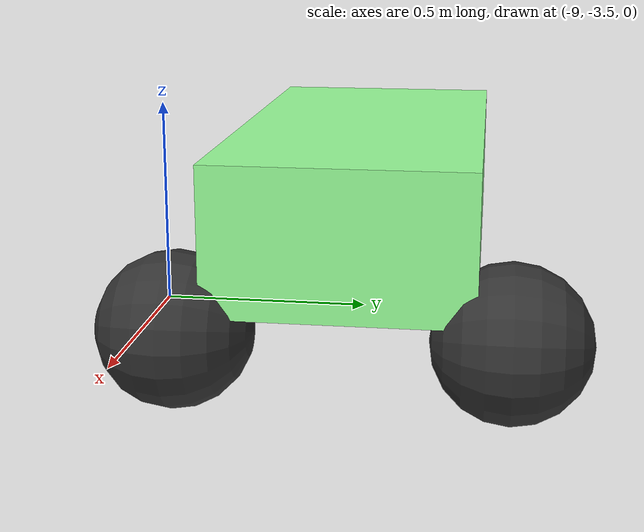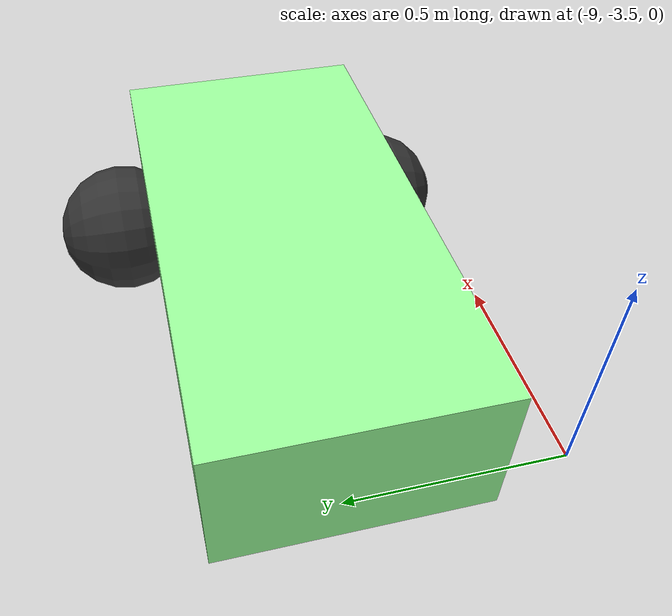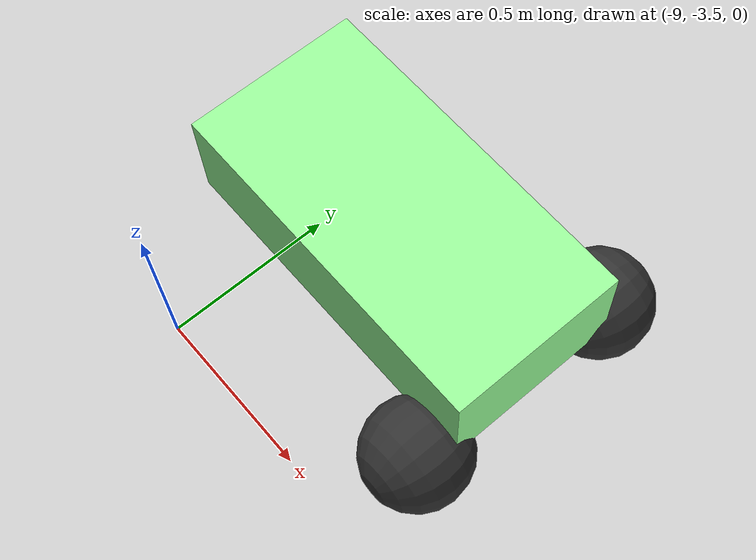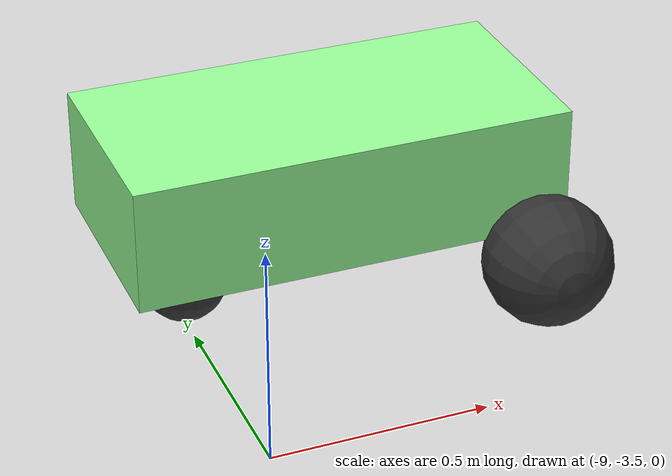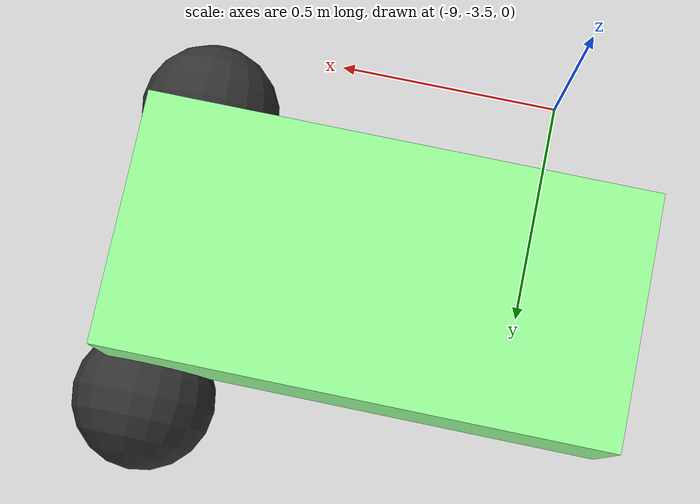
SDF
<?xml version="1.0" ?>
<sdf version="1.6">
  <model name='robot4'>
  <pose>-8.52989 -2.96423 0.201518 -0 -0 -0.000819</pose>
  <link name='base_link'>
    <pose>-0.151427 -0 0.175 0 -0 0</pose>
    <inertial>
      <mass>0.571975</mass>
      <inertia>
        <ixx>0.015791</ixx>
        <ixy>0</ixy>
        <ixz>0</ixz>
        <iyy>0.20826</iyy>
        <iyz>0</iyz>
        <izz>0.240507</izz>
      </inertia>
      <pose>0 0 0 0 -0 0</pose>
    </inertial>
    <visual name='visual'>
      <geometry>
        <box>
          <size>1.00571 0.5 0.284363</size>
        </box>
      </geometry>
      <material>
        <ambient>0.6 1.0 0.6 1.0</ambient>
        <diffuse>0.6 1.0 0.6 1.0</diffuse>
        <specular>0.8 1.0 0.8 1.0</specular>
      </material>
    </visual>
    <collision name='collision'>
      <geometry>
        <box>
          <size>1.00571 0.5 0.284363</size>
        </box>
      </geometry>
      <max_contacts>10</max_contacts>
      <surface>
        <contact>
          <ode/>
        </contact>
        <bounce/>
        <friction>
          <torsional>
            <ode/>
          </torsional>
          <ode/>
        </friction>
      </surface>
    </collision>
    <self_collide>0</self_collide>
    <enable_wind>0</enable_wind>
    <kinematic>0</kinematic>
  </link>
  <link name='left_wheel'>
    <pose>0.277141 0.312515 -0.0125 -1.5707 0 0</pose>
    <inertial>
      <mass>0.5</mass>
      <inertia>
        <ixx>0.0364583</ixx>
        <ixy>0</ixy>
        <ixz>0</ixz>
        <iyy>0.0364583</iyy>
        <iyz>0</iyz>
        <izz>0.03125</izz>
      </inertia>
      <pose>0 0 0 0 -0 0</pose>
    </inertial>
    <visual name='visual'>
      <geometry>
        <sphere>
          <radius>0.15</radius>
        </sphere>
      </geometry>
      <material>
        <ambient>0.1 0.1 0.1 1.0</ambient>
        <diffuse>0.2 0.2 0.2 1.0</diffuse>
        <specular>0.3 0.3 0.3 1.0</specular>
      </material>
    </visual>
    <collision name='collision'>
      <geometry>
        <sphere>
          <radius>0.15</radius>
        </sphere>
      </geometry>
      <surface>
        <friction>
          <ode>
            <mu>1</mu>
            <mu2>1</mu2>
            <slip1>0</slip1>
            <slip2>0</slip2>
          </ode>
          <torsional>
            <ode/>
          </torsional>
        </friction>
        <contact>
          <ode>
            <soft_cfm>0</soft_cfm>
            <soft_erp>0.2</soft_erp>
            <kp>1e+13</kp>
            <kd>1</kd>
            <max_vel>0.01</max_vel>
            <min_depth>0.01</min_depth>
          </ode>
        </contact>
        <bounce/>
      </surface>
      <max_contacts>10</max_contacts>
    </collision>
    <self_collide>0</self_collide>
    <enable_wind>0</enable_wind>
    <kinematic>0</kinematic>
  </link>
  <link name='right_wheel'>
    <pose>0.277141 -0.312515 -0.0125 -1.5707 0 0</pose>
    <inertial>
      <mass>0.5</mass>
      <inertia>
        <ixx>0.0364583</ixx>
        <ixy>0</ixy>
        <ixz>0</ixz>
        <iyy>0.0364583</iyy>
        <iyz>0</iyz>
        <izz>0.03125</izz>
      </inertia>
      <pose>0 0 0 0 -0 0</pose>
    </inertial>
    <visual name='visual'>
      <geometry>
        <sphere>
          <radius>0.15</radius>
        </sphere>
      </geometry>
      <material>
        <ambient>0.1 0.1 0.1 1.0</ambient>
        <diffuse>0.2 0.2 0.2 1.0</diffuse>
        <specular>0.3 0.3 0.3 1.0</specular>
      </material>
    </visual>
    <collision name='collision'>
      <geometry>
        <sphere>
          <radius>0.15</radius>
        </sphere>
      </geometry>
      <surface>
        <friction>
          <ode>
            <mu>1</mu>
            <mu2>1</mu2>
            <slip1>0</slip1>
            <slip2>0</slip2>
          </ode>
          <torsional>
            <ode/>
          </torsional>
        </friction>
        <contact>
          <ode>
            <soft_cfm>0</soft_cfm>
            <soft_erp>0.2</soft_erp>
            <kp>1e+13</kp>
            <kd>1</kd>
            <max_vel>0.01</max_vel>
            <min_depth>0.01</min_depth>
          </ode>
        </contact>
        <bounce/>
      </surface>
      <max_contacts>10</max_contacts>
    </collision>
    <self_collide>0</self_collide>
    <enable_wind>0</enable_wind>
    <kinematic>0</kinematic>
  </link>
  <link name='caster'>
    <pose>-0.478569 -0 -0.0625 0 -0 0</pose>
    <inertial>
      <mass>0.5</mass>
      <inertia>
        <ixx>0.025</ixx>
        <ixy>0</ixy>
        <ixz>0</ixz>
        <iyy>0.025</iyy>
        <iyz>0</iyz>
        <izz>0.025</izz>
      </inertia>
      <pose>0 0 0 0 -0 0</pose>
    </inertial>
    <visual name='visual'>
      <geometry>
        <sphere>
          <radius>0.1</radius>
        </sphere>
      </geometry>
      <material>
        <ambient>0.1 0.1 0.1 1.0</ambient>
        <diffuse>0.2 0.2 0.2 1.0</diffuse>
        <specular>0.3 0.3 0.3 1.0</specular>
      </material>
    </visual>
    <collision name='collision'>
      <geometry>
        <sphere>
          <radius>0.1</radius>
        </sphere>
      </geometry>
      <max_contacts>10</max_contacts>
      <surface>
        <contact>
          <ode/>
        </contact>
        <bounce/>
        <friction>
          <torsional>
            <ode/>
          </torsional>
          <ode/>
        </friction>
      </surface>
    </collision>
    <self_collide>0</self_collide>
    <enable_wind>0</enable_wind>
    <kinematic>0</kinematic>
  </link>
  <joint name='left_wheel_joint' type='revolute'>
    <parent>base_link</parent>
    <child>left_wheel</child>
    <axis>
      <xyz>0 0 1</xyz>
      <limit>
        <lower>-1.79769e+308</lower>
        <upper>1.79769e+308</upper>
      </limit>
      <dynamics>
        <spring_reference>0</spring_reference>
        <spring_stiffness>0</spring_stiffness>
      </dynamics>
    </axis>
  </joint>
  <joint name='right_wheel_joint' type='revolute'>
    <parent>base_link</parent>
    <child>right_wheel</child>
    <axis>
      <xyz>0 0 1</xyz>
      <limit>
        <lower>-1.79769e+308</lower>
        <upper>1.79769e+308</upper>
      </limit>
      <dynamics>
        <spring_reference>0</spring_reference>
        <spring_stiffness>0</spring_stiffness>
      </dynamics>
    </axis>
  </joint>
  <joint name='caster_wheel' type='ball'>
    <parent>base_link</parent>
    <child>caster</child>
  </joint>
  <plugin name="gazebo_ros_diff_drive" filename="libgazebo_ros_diff_drive.so">
      <ros>
        <namespace>/robot4</namespace> <!-- Adicionado namespace único -->
        <remapping>odom:=odom</remapping>
      </ros>
      <publishOdomTf>1</publishOdomTf>
      <commandTopic>cmd_vel</commandTopic>
      <odometryTopic>odom</odometryTopic>
      <odometrySource>WORLD</odometrySource>
      <publish_odom>1</publish_odom>
      <robotBaseFrame>base_link</robotBaseFrame>
      <left_joint>left_wheel_joint</left_joint>
      <right_joint>right_wheel_joint</right_joint>
    </plugin>
</model>
</sdf>
